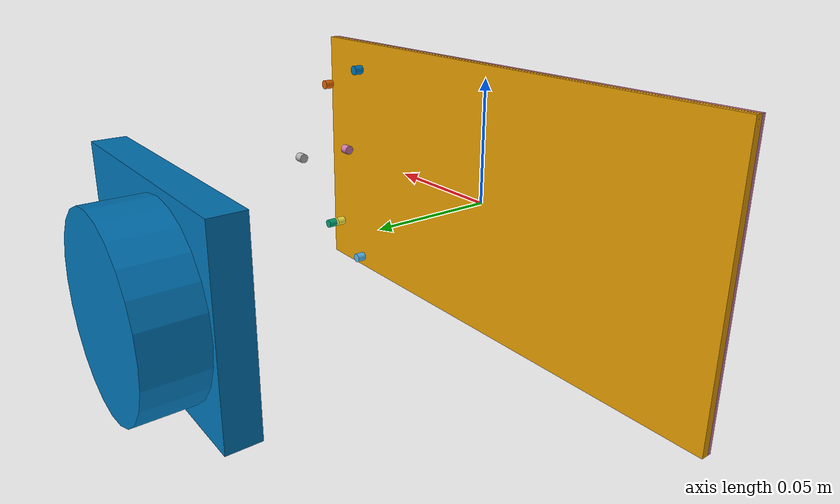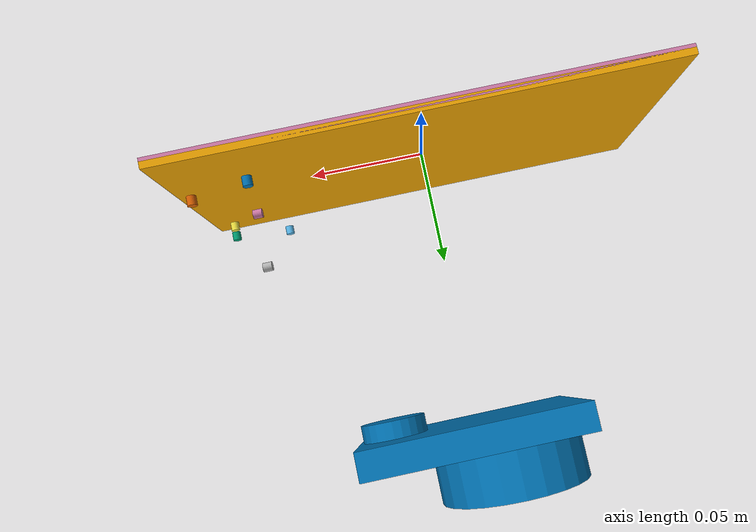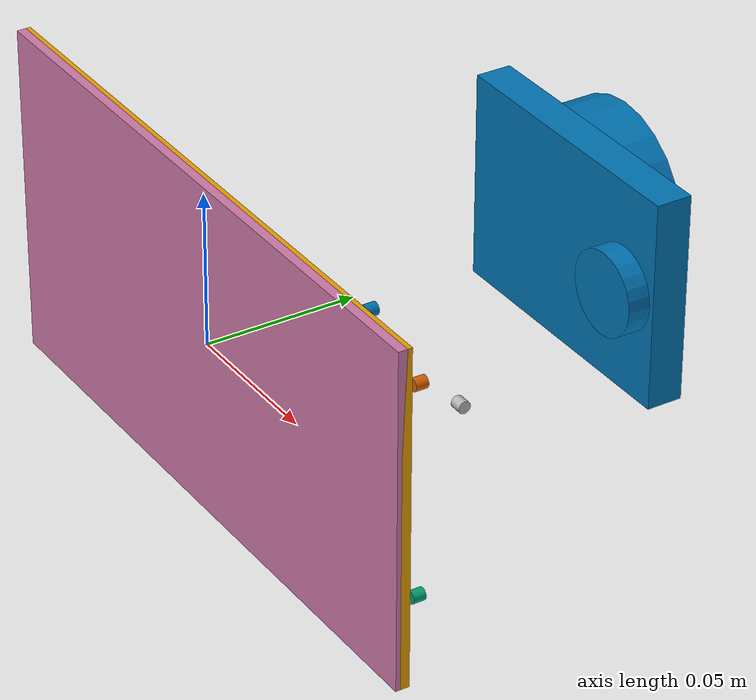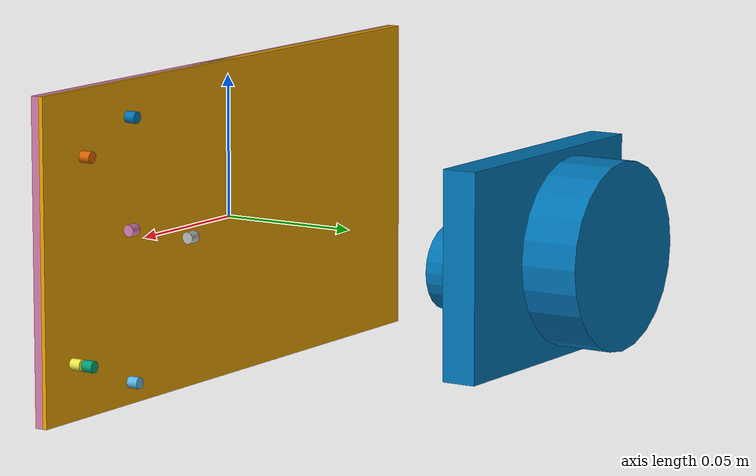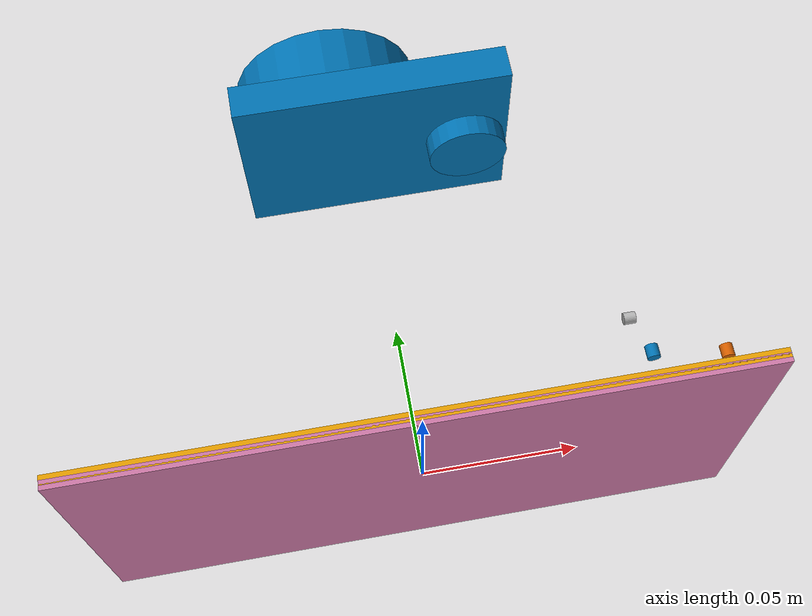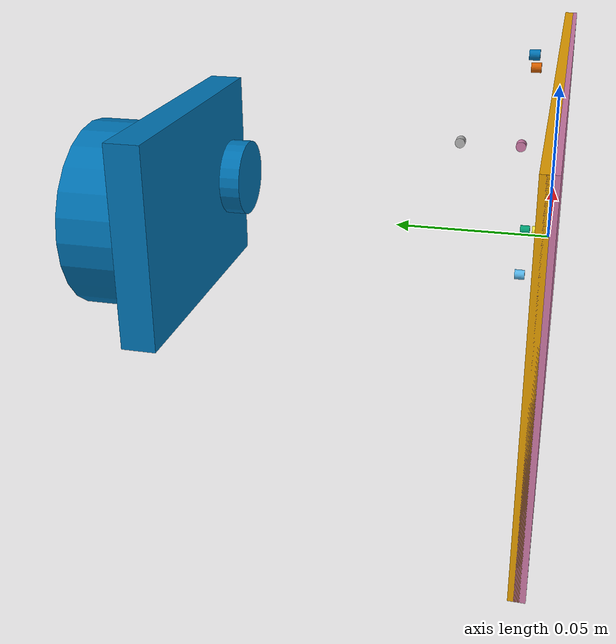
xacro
<?xml version="1.0"?>
<robot name="Osoyoo_raw_model" xmlns:xacro="http://ros.org/wiki/xacro">
  <link name="base_link">
    <visual>
      <geometry>
        <box size="0.215 0.003 0.111"/>
      </geometry>
    </visual>
    <collision>
      <geometry>
        <box size="0.215 0.003 0.111"/>
      </geometry>
    </collision>
  </link>

  <joint name="Camera Servo" type="fixed">
    <parent link="base_link"/>
    <child link="Camera Pivot"/>
    <axis xyz=" 0 1 0"/>
    <limit effort="10" velocity="10"/>
    <origin xyz="0.062 0.06 0" rpy="0 0 0"/>
  </joint>
  <link name="Camera Pivot">
  </link>

  <link name="Camera_Body">
  </link>
  <joint name="Camera Pivot_Camera_Body_joint" type="fixed">
    <parent link="Camera Pivot"/>
    <child link="Camera_Body"/>
    <origin xyz="0.022 0.033 0" rpy="0 0 -1.5708"/>
  </joint>

  <link name="solid_lidar_1">
  </link>
  <joint name="YDlidar_solid_lidar_1_joint" type="fixed">
    <parent link="YDlidar"/>
    <child link="solid_lidar_1"/>
    <origin xyz="0 0.0175 0" rpy="0 0 0"/>
  </joint>

  <link name="YDlidar">
    <visual>
      <origin xyz="0.014 0.002 0" rpy="3.1415927 -1.5707927 3.1415927"/>
      <geometry>
        <box size="0.07 0.012 0.095"/>
      </geometry>
    </visual>
    <collision>
      <origin xyz="0.014 0.002 0" rpy="3.1415927 -1.5707927 3.1415927"/>
      <geometry>
        <box size="0.07 0.012 0.095"/>
      </geometry>
    </collision>
    <visual>
      <origin xyz="0 0.0175 0" rpy="1.5707963 0 0"/>
      <geometry>
        <cylinder radius="0.032" length="0.021"/>
      </geometry>
    </visual>
    <collision>
      <origin xyz="0 0.0175 0" rpy="1.5707963 0 0"/>
      <geometry>
        <cylinder radius="0.032" length="0.021"/>
      </geometry>
    </collision>
    <visual>
      <origin xyz="0.046 -0.0075 0" rpy="1.5707963 0 0"/>
      <geometry>
        <cylinder radius="0.014" length="0.008"/>
      </geometry>
    </visual>
    <collision>
      <origin xyz="0.046 -0.0075 0" rpy="1.5707963 0 0"/>
      <geometry>
        <cylinder radius="0.014" length="0.008"/>
      </geometry>
    </collision>
  </link>

  <joint name="base_link_YDlidar_joint" type="fixed">
    <parent link="base_link"/>
    <child link="YDlidar"/>
    <origin xyz="-0.009 0.125 0" rpy="0 0 0"/>
  </joint>

  <link name="solid_lidar_2">
  </link>
  <joint name="YDlidar_solid_lidar_2_joint" type="fixed">
    <parent link="YDlidar"/>
    <child link="solid_lidar_2"/>
    <origin xyz="0 0.0075 0" rpy="1.5707927 -2.6535897e-06 3.1415927"/>
  </joint>

  <link name="Base">
    <visual>
      <geometry>
        <box size="0.215 0.003 0.111"/>
      </geometry>
    </visual>
    <collision>
      <geometry>
        <box size="0.215 0.003 0.111"/>
      </geometry>
    </collision>
  </link>

  <joint name="base_link_Base_joint" type="fixed">
    <parent link="base_link"/>
    <child link="Base"/>
    <origin xyz="0 -0.0015 0" rpy="0 0 0"/>
  </joint>

  <joint name="Right Motor" type="fixed">
    <parent link="base_link"/>
    <child link="RL_Wheel"/>
    <axis xyz="0 1 -3.3671047e-06"/>
    <limit effort="10" velocity="10"/>
    <origin xyz="-0.071 0.01 0.078" rpy="1.5707997 0 0"/>
  </joint>
  <link name="RL_Wheel">
  </link>

  <joint name="Left Motor" type="fixed">
    <parent link="base_link"/>
    <child link="RR_wheel"/>
    <axis xyz="0 -1 -3.6732051e-06"/>
    <limit effort="10" velocity="10"/>
    <origin xyz="-0.071 0.01 -0.078" rpy="-1.5708 0 0"/>
  </joint>
  <link name="RR_wheel">
  </link>

  <joint name="hingejoint_238" type="fixed">
    <parent link="base_link"/>
    <child link="FL Corner"/>
    <axis xyz="0 1 0"/>
    <origin xyz="0.071 0.011 -0.045" rpy="0 0 0"/>
  </joint>

  <link name="FL Corner">
    <visual>
      <origin xyz="0 0 0" rpy="1.5707963 0 0"/>
      <geometry>
        <cylinder radius="0.002" length="0.004"/>
      </geometry>
    </visual>
    <collision>
      <origin xyz="0 0 0" rpy="1.5707963 0 0"/>
      <geometry>
        <cylinder radius="0.002" length="0.004"/>
      </geometry>
    </collision>
  </link>

  <link name="FL Arm Pivot">
    <visual>
      <origin xyz="0 0 0" rpy="1.5707963 0 0"/>
      <geometry>
        <cylinder radius="0.002" length="0.004"/>
      </geometry>
    </visual>
    <collision>
      <origin xyz="0 0 0" rpy="1.5707963 0 0"/>
      <geometry>
        <cylinder radius="0.002" length="0.004"/>
      </geometry>
    </collision>
  </link>

  <joint name="FL Corner_FL Arm Pivot_joint" type="fixed">
    <parent link="FL Corner"/>
    <child link="FL Arm Pivot"/>
    <origin xyz="0.025 0 0.01" rpy="0 0 0"/>
  </joint>

  <joint name="hingejoint_289" type="fixed">
    <parent link="FL Arm Pivot"/>
    <child link="FL Steer Bar Pivot"/>
    <axis xyz="0 1 0"/>
    <origin xyz="0 0 0" rpy="0 0 0"/>
  </joint>
  <link name="FL Steer Bar Pivot">                           //
    <visual>
      <origin xyz="0 -0.005 0" rpy="1.5707963 0 0"/>
      <geometry>
        <cylinder radius="0.002" length="0.004"/>
      </geometry>
    </visual>
    <collision>
      <origin xyz="0 -0.005 0" rpy="1.5707963 0 0"/>
      <geometry>
        <cylinder radius="0.002" length="0.004"/>
      </geometry>
    </collision>
  </link>

  <joint name="hingejoint_174" type="fixed">
    <parent link="base_link"/>
    <child link="FR Corner"/>
    <axis xyz="0 1 0"/>
    <origin xyz="0.071 0.011 0.045" rpy="0 0 0"/>
  </joint>
  <link name="FR Corner">
    <visual>
      <origin xyz="0 0 0" rpy="1.5707963 0 0"/>
      <geometry>
        <cylinder radius="0.002" length="0.004"/>
      </geometry>
    </visual>
    <collision>
      <origin xyz="0 0 0" rpy="1.5707963 0 0"/>
      <geometry>
        <cylinder radius="0.002" length="0.004"/>
      </geometry>
    </collision>
  </link>

  <link name="FR Arm Pivot">
    <visual>
      <origin xyz="0 0 0" rpy="1.5707963 0 0"/>
      <geometry>
        <cylinder radius="0.002" length="0.004"/>
      </geometry>
    </visual>
    <collision>
      <origin xyz="0 0 0" rpy="1.5707963 0 0"/>
      <geometry>
        <cylinder radius="0.002" length="0.004"/>
      </geometry>
    </collision>
  </link>

  <joint name="FR Corner_FR Arm Pivot_joint" type="fixed">
    <parent link="FR Corner"/>
    <child link="FR Arm Pivot"/>
    <origin xyz="0.025 0 -0.01" rpy="0 0 0"/>
  </joint>

  <joint name="Steering" type="fixed">
    <parent link="base_link"/>
    <child link="Steer_Arm_Pivot"/>
    <axis xyz="-3.6732051e-06 1 0"/>
    <limit effort="10" velocity="10"/>
    <origin xyz="0.076 0.014 0.008" rpy="0 0 -1.5708"/>
  </joint>
  <link name="Steer_Arm_Pivot">
    <visual>
      <origin xyz="0 0 -6.938894e-18" rpy="1.5707963 0 0"/>
      <geometry>
        <cylinder radius="0.002" length="0.004"/>
      </geometry>
    </visual>
    <collision>
      <origin xyz="0 0 -6.938894e-18" rpy="1.5707963 0 0"/>
      <geometry>
        <cylinder radius="0.002" length="0.004"/>
      </geometry>
    </collision>
  </link>

  <link name="Servo Steel Rod Pivot">
    <visual>
      <origin xyz="0 0 0" rpy="1.5707963 0 0"/>
      <geometry>
        <cylinder radius="0.002" length="0.004"/>
      </geometry>
    </visual>
    <collision>
      <origin xyz="0 0 0" rpy="1.5707963 0 0"/>
      <geometry>
        <cylinder radius="0.002" length="0.004"/>
      </geometry>
    </collision>
  </link>

  <joint name="Steer_Arm_Pivot_Servo Steel Rod Pivot_joint" type="fixed">
    <parent link="Steer_Arm_Pivot"/>
    <child link="Servo Steel Rod Pivot"/>
    <origin xyz="-0.024 0 0" rpy="0 0 0"/>
  </joint>

</robot>
